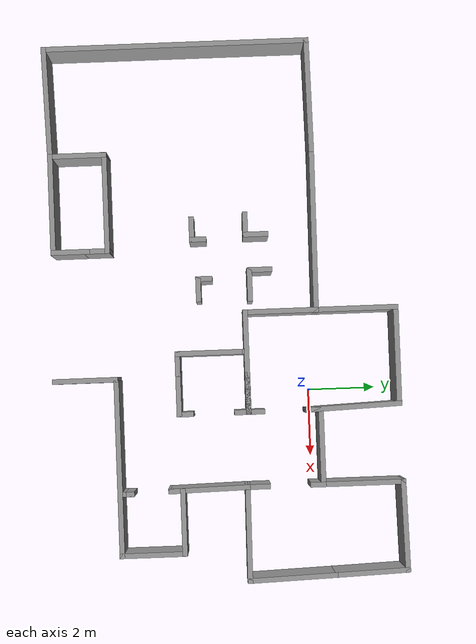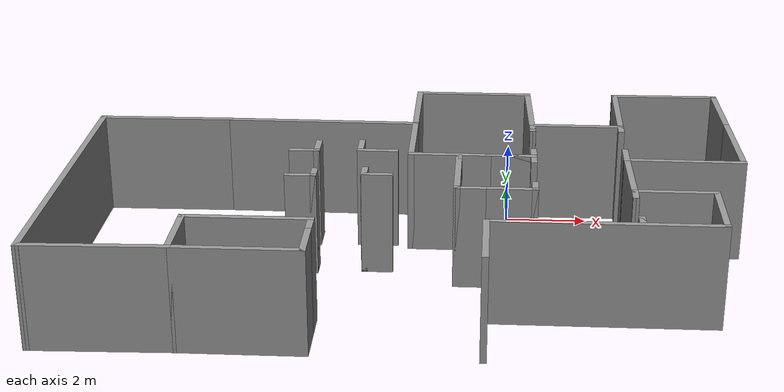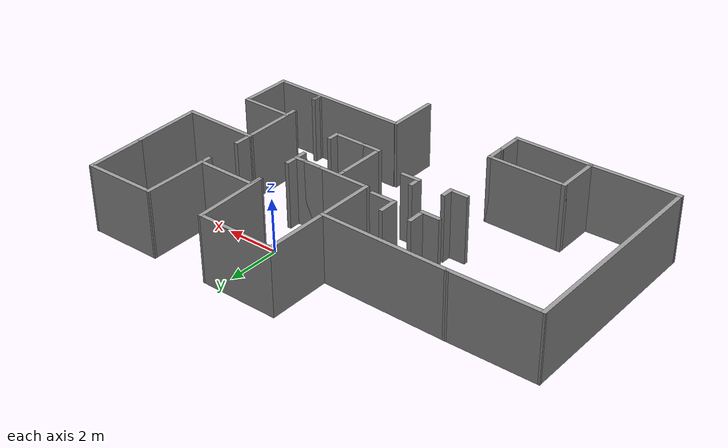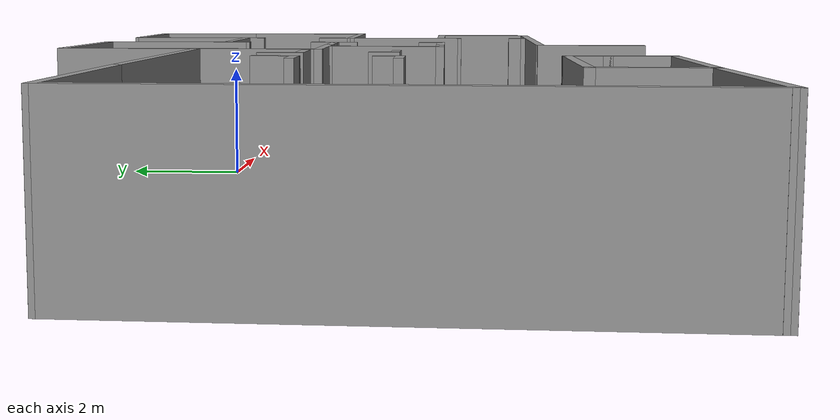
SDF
<?xml version='1.0'?>
<sdf version='1.6'>
  <model name='room1'>
    <pose frame=''>-2.39226 -2.438 0 0 -0 0</pose>
    <link name='Wall_10'>
      <collision name='Wall_10_Collision'>
        <geometry>
          <box>
            <size>3 0.15 2.5</size>
          </box>
        </geometry>
        <pose frame=''>0 0 1.25 0 -0 0</pose>
      </collision>
      <visual name='Wall_10_Visual'>
        <pose frame=''>0 0 1.25 0 -0 0</pose>
        <geometry>
          <box>
            <size>3 0.15 2.5</size>
          </box>
        </geometry>
        <material>
          <script>
            <uri>file://media/materials/scripts/gazebo.material</uri>
            <name>Gazebo/Grey</name>
          </script>
          <ambient>1 1 1 1</ambient>
        </material>
        <meta>
          <layer>0</layer>
        </meta>
      </visual>
      <pose frame=''>-3.34611 -3.4198 0 0 -0 0</pose>
    </link>
    <link name='Wall_100'>
      <collision name='Wall_100_Collision'>
        <geometry>
          <box>
            <size>3 0.15 2.5</size>
          </box>
        </geometry>
        <pose frame=''>0 0 1.25 0 -0 0</pose>
      </collision>
      <visual name='Wall_100_Visual'>
        <pose frame=''>0 0 1.25 0 -0 0</pose>
        <geometry>
          <box>
            <size>3 0.15 2.5</size>
          </box>
        </geometry>
        <material>
          <script>
            <uri>file://media/materials/scripts/gazebo.material</uri>
            <name>Gazebo/Grey</name>
          </script>
          <ambient>1 1 1 1</ambient>
        </material>
        <meta>
          <layer>0</layer>
        </meta>
      </visual>
      <pose frame=''>-3.34611 -5.0198 0 0 -0 0</pose>
    </link>
    <link name='Wall_101'>
      <collision name='Wall_101_Collision'>
        <geometry>
          <box>
            <size>1.15 0.15 2.5</size>
          </box>
        </geometry>
        <pose frame=''>0 0 1.25 0 -0 0</pose>
      </collision>
      <visual name='Wall_101_Visual'>
        <pose frame=''>0 0 1.25 0 -0 0</pose>
        <geometry>
          <box>
            <size>1.15 0.15 2.5</size>
          </box>
        </geometry>
        <material>
          <script>
            <uri>file://media/materials/scripts/gazebo.material</uri>
            <name>Gazebo/Grey</name>
          </script>
          <ambient>1 1 1 1</ambient>
        </material>
        <meta>
          <layer>0</layer>
        </meta>
      </visual>
      <pose frame=''>-1.92111 -4.5198 0 0 -0 1.5708</pose>
    </link>
    <link name='Wall_103'>
      <collision name='Wall_103_Collision'>
        <geometry>
          <box>
            <size>4.90013 0.15 2.5</size>
          </box>
        </geometry>
        <pose frame=''>0 0 1.25 0 -0 0</pose>
      </collision>
      <visual name='Wall_103_Visual'>
        <pose frame=''>0 0 1.25 0 -0 0</pose>
        <geometry>
          <box>
            <size>4.90013 0.15 2.5</size>
          </box>
        </geometry>
        <material>
          <script>
            <uri>file://media/materials/scripts/gazebo.material</uri>
            <name>Gazebo/Grey</name>
          </script>
          <ambient>1 1 1 1</ambient>
        </material>
        <meta>
          <layer>0</layer>
        </meta>
      </visual>
      <pose frame=''>-2.33297 2.70219 0 0 -0 -0.007364</pose>
    </link>
    <link name='Wall_11'>
      <collision name='Wall_11_Collision'>
        <geometry>
          <box>
            <size>0.75 0.15 2.5</size>
          </box>
        </geometry>
        <pose frame=''>0 0 1.25 0 -0 0</pose>
      </collision>
      <visual name='Wall_11_Visual'>
        <pose frame=''>0 0 1.25 0 -0 0</pose>
        <geometry>
          <box>
            <size>0.75 0.15 2.5</size>
          </box>
        </geometry>
        <material>
          <script>
            <uri>file://media/materials/scripts/gazebo.material</uri>
            <name>Gazebo/Grey</name>
          </script>
          <ambient>1 1 1 1</ambient>
        </material>
        <meta>
          <layer>0</layer>
        </meta>
      </visual>
      <pose frame=''>-1.92111 -3.7198 0 0 -0 -1.5708</pose>
    </link>
    <link name='Wall_16'>
      <collision name='Wall_16_Collision'>
        <geometry>
          <box>
            <size>7.93882 0.15 2.5</size>
          </box>
        </geometry>
        <pose frame=''>0 0 1.25 0 -0 0</pose>
      </collision>
      <visual name='Wall_16_Visual'>
        <pose frame=''>0 0 1.25 0 -0 0</pose>
        <geometry>
          <box>
            <size>7.93882 0.15 2.5</size>
          </box>
        </geometry>
        <material>
          <script>
            <uri>file://media/materials/scripts/gazebo.material</uri>
            <name>Gazebo/Grey</name>
          </script>
          <ambient>1 1 1 1</ambient>
        </material>
        <meta>
          <layer>0</layer>
        </meta>
      </visual>
      <pose frame=''>-7.95796 -1.20971 0 0 -0 1.5708</pose>
    </link>
    <link name='Wall_17'>
      <collision name='Wall_17_Collision'>
        <geometry>
          <box>
            <size>3.40019 0.15 2.5</size>
          </box>
        </geometry>
        <pose frame=''>0 0 1.25 0 -0 0</pose>
      </collision>
      <visual name='Wall_17_Visual'>
        <pose frame=''>0 0 1.25 0 -0 0</pose>
        <geometry>
          <box>
            <size>3.40019 0.15 2.5</size>
          </box>
        </geometry>
        <material>
          <script>
            <uri>file://media/materials/scripts/gazebo.material</uri>
            <name>Gazebo/Grey</name>
          </script>
          <ambient>1 1 1 1</ambient>
        </material>
        <meta>
          <layer>0</layer>
        </meta>
      </visual>
      <pose frame=''>-6.33296 2.70219 0 0 -0 0.010763</pose>
    </link>
    <link name='Wall_19'>
      <collision name='Wall_19_Collision'>
        <geometry>
          <box>
            <size>1.75 0.15 2.5</size>
          </box>
        </geometry>
        <pose frame=''>0 0 1.25 0 -0 0</pose>
      </collision>
      <visual name='Wall_19_Visual'>
        <pose frame=''>0 0 1.25 0 -0 0</pose>
        <geometry>
          <box>
            <size>1.75 0.15 2.5</size>
          </box>
        </geometry>
        <material>
          <script>
            <uri>file://media/materials/scripts/gazebo.material</uri>
            <name>Gazebo/Grey</name>
          </script>
          <ambient>1 1 1 1</ambient>
        </material>
        <meta>
          <layer>0</layer>
        </meta>
      </visual>
      <pose frame=''>-4.77111 -4.2198 0 0 -0 -1.5708</pose>
    </link>
    <link name='Wall_23'>
      <collision name='Wall_23_Collision'>
        <geometry>
          <box>
            <size>2 0.15 2.5</size>
          </box>
        </geometry>
        <pose frame=''>0 0 1.25 0 -0 0</pose>
      </collision>
      <visual name='Wall_23_Visual'>
        <pose frame=''>0 0 1.25 0 -0 0</pose>
        <geometry>
          <box>
            <size>2 0.15 2.5</size>
          </box>
        </geometry>
        <material>
          <script>
            <uri>file://media/materials/scripts/gazebo.material</uri>
            <name>Gazebo/Grey</name>
          </script>
          <ambient>1 1 1 1</ambient>
        </material>
        <meta>
          <layer>0</layer>
        </meta>
      </visual>
      <pose frame=''>6.1676 -1.44342 0 0 -0 0</pose>
    </link>
    <link name='Wall_24'>
      <collision name='Wall_24_Collision'>
        <geometry>
          <box>
            <size>2 0.15 2.5</size>
          </box>
        </geometry>
        <pose frame=''>0 0 1.25 0 -0 0</pose>
      </collision>
      <visual name='Wall_24_Visual'>
        <pose frame=''>0 0 1.25 0 -0 0</pose>
        <geometry>
          <box>
            <size>2 0.15 2.5</size>
          </box>
        </geometry>
        <material>
          <script>
            <uri>file://media/materials/scripts/gazebo.material</uri>
            <name>Gazebo/Grey</name>
          </script>
          <ambient>1 1 1 1</ambient>
        </material>
        <meta>
          <layer>0</layer>
        </meta>
      </visual>
      <pose frame=''>7.0926 -2.36842 0 0 -0 -1.5708</pose>
    </link>
    <link name='Wall_25'>
      <collision name='Wall_25_Collision'>
        <geometry>
          <box>
            <size>5.25 0.15 2.5</size>
          </box>
        </geometry>
        <pose frame=''>0 0 1.25 0 -0 0</pose>
      </collision>
      <visual name='Wall_25_Visual'>
        <pose frame=''>0 0 1.25 0 -0 0</pose>
        <geometry>
          <box>
            <size>5.25 0.15 2.5</size>
          </box>
        </geometry>
        <material>
          <script>
            <uri>file://media/materials/scripts/gazebo.material</uri>
            <name>Gazebo/Grey</name>
          </script>
          <ambient>1 1 1 1</ambient>
        </material>
        <meta>
          <layer>0</layer>
        </meta>
      </visual>
      <pose frame=''>4.5426 -3.29342 0 0 -0 3.14159</pose>
    </link>
    <link name='Wall_27'>
      <collision name='Wall_27_Collision'>
        <geometry>
          <box>
            <size>0.5 0.15 2.5</size>
          </box>
        </geometry>
        <pose frame=''>0 0 1.25 0 -0 0</pose>
      </collision>
      <visual name='Wall_27_Visual'>
        <pose frame=''>0 0 1.25 0 -0 0</pose>
        <geometry>
          <box>
            <size>0.5 0.15 2.5</size>
          </box>
        </geometry>
        <material>
          <script>
            <uri>file://media/materials/scripts/gazebo.material</uri>
            <name>Gazebo/Grey</name>
          </script>
          <ambient>1 1 1 1</ambient>
        </material>
        <meta>
          <layer>0</layer>
        </meta>
      </visual>
      <pose frame=''>5.2426 -1.61842 0 0 -0 -1.5708</pose>
    </link>
    <link name='Wall_33'>
      <collision name='Wall_33_Collision'>
        <geometry>
          <box>
            <size>0.25 0.15 2.5</size>
          </box>
        </geometry>
        <pose frame=''>0 0 1.25 0 -0 0</pose>
      </collision>
      <visual name='Wall_33_Visual'>
        <pose frame=''>0 0 1.25 0 -0 0</pose>
        <geometry>
          <box>
            <size>0.25 0.15 2.5</size>
          </box>
        </geometry>
        <material>
          <script>
            <uri>file://media/materials/scripts/gazebo.material</uri>
            <name>Gazebo/Grey</name>
          </script>
          <ambient>1 1 1 1</ambient>
        </material>
        <meta>
          <layer>0</layer>
        </meta>
      </visual>
      <pose frame=''>5.28567 -2.99757 0 0 -0 -1.5708</pose>
    </link>
    <link name='Wall_34'>
      <collision name='Wall_34_Collision'>
        <geometry>
          <box>
            <size>0.25 0.15 2.5</size>
          </box>
        </geometry>
        <pose frame=''>0 0 1.25 0 -0 0</pose>
      </collision>
      <visual name='Wall_34_Visual'>
        <pose frame=''>0 0 1.25 0 -0 0</pose>
        <geometry>
          <box>
            <size>0.25 0.15 2.5</size>
          </box>
        </geometry>
        <material>
          <script>
            <uri>file://media/materials/scripts/gazebo.material</uri>
            <name>Gazebo/Grey</name>
          </script>
          <ambient>1 1 1 1</ambient>
        </material>
        <meta>
          <layer>0</layer>
        </meta>
      </visual>
      <pose frame=''>5.28567 -3.09757 0 0 -0 -1.5708</pose>
    </link>
    <link name='Wall_36'>
      <collision name='Wall_36_Collision'>
        <geometry>
          <box>
            <size>2.41743 0.15 2.5</size>
          </box>
        </geometry>
        <pose frame=''>0 0 1.25 0 -0 0</pose>
      </collision>
      <visual name='Wall_36_Visual'>
        <pose frame=''>0 0 1.25 0 -0 0</pose>
        <geometry>
          <box>
            <size>2.41743 0.15 2.5</size>
          </box>
        </geometry>
        <material>
          <script>
            <uri>file://media/materials/scripts/gazebo.material</uri>
            <name>Gazebo/Grey</name>
          </script>
          <ambient>1 1 1 1</ambient>
        </material>
        <meta>
          <layer>0</layer>
        </meta>
      </visual>
      <pose frame=''>5.22138 -0.659903 0 0 -0 1.58952</pose>
    </link>
    <link name='Wall_37'>
      <collision name='Wall_37_Collision'>
        <geometry>
          <box>
            <size>2.90786 0.15 2.5</size>
          </box>
        </geometry>
        <pose frame=''>0 0 1.25 0 -0 0</pose>
      </collision>
      <visual name='Wall_37_Visual'>
        <pose frame=''>0 0 1.25 0 -0 0</pose>
        <geometry>
          <box>
            <size>2.90786 0.15 2.5</size>
          </box>
        </geometry>
        <material>
          <script>
            <uri>file://media/materials/scripts/gazebo.material</uri>
            <name>Gazebo/Grey</name>
          </script>
          <ambient>1 1 1 1</ambient>
        </material>
        <meta>
          <layer>0</layer>
        </meta>
      </visual>
      <pose frame=''>6.57882 0.460494 0 0 -0 -0.009517</pose>
    </link>
    <link name='Wall_38'>
      <collision name='Wall_38_Collision'>
        <geometry>
          <box>
            <size>2.63851 0.15 2.5</size>
          </box>
        </geometry>
        <pose frame=''>0 0 1.25 0 -0 0</pose>
      </collision>
      <visual name='Wall_38_Visual'>
        <pose frame=''>0 0 1.25 0 -0 0</pose>
        <geometry>
          <box>
            <size>2.63851 0.15 2.5</size>
          </box>
        </geometry>
        <material>
          <script>
            <uri>file://media/materials/scripts/gazebo.material</uri>
            <name>Gazebo/Grey</name>
          </script>
          <ambient>1 1 1 1</ambient>
        </material>
        <meta>
          <layer>0</layer>
        </meta>
      </visual>
      <pose frame=''>7.91637 1.71106 0 0 -0 1.60384</pose>
    </link>
    <link name='Wall_44'>
      <collision name='Wall_44_Collision'>
        <geometry>
          <box>
            <size>1.93882 0.15 2.5</size>
          </box>
        </geometry>
        <pose frame=''>0 0 1.25 0 -0 0</pose>
      </collision>
      <visual name='Wall_44_Visual'>
        <pose frame=''>0 0 1.25 0 -0 0</pose>
        <geometry>
          <box>
            <size>1.93882 0.15 2.5</size>
          </box>
        </geometry>
        <material>
          <script>
            <uri>file://media/materials/scripts/gazebo.material</uri>
            <name>Gazebo/Grey</name>
          </script>
          <ambient>1 1 1 1</ambient>
        </material>
        <meta>
          <layer>0</layer>
        </meta>
      </visual>
      <pose frame=''>1.89203 -4.20971 0 0 -0 1.5708</pose>
    </link>
    <link name='Wall_48'>
      <collision name='Wall_48_Collision'>
        <geometry>
          <box>
            <size>1.34252 0.15 2.5</size>
          </box>
        </geometry>
        <pose frame=''>0 0 1.25 0 -0 0</pose>
      </collision>
      <visual name='Wall_48_Visual'>
        <pose frame=''>0 0 1.25 0 -0 0</pose>
        <geometry>
          <box>
            <size>1.34252 0.15 2.5</size>
          </box>
        </geometry>
        <material>
          <script>
            <uri>file://media/materials/scripts/gazebo.material</uri>
            <name>Gazebo/Grey</name>
          </script>
          <ambient>1 1 1 1</ambient>
        </material>
        <meta>
          <layer>0</layer>
        </meta>
      </visual>
      <pose frame=''>2.39577 -1.4653 0 0 -0 0</pose>
    </link>
    <link name='Wall_49'>
      <collision name='Wall_49_Collision'>
        <geometry>
          <box>
            <size>0.5 0.15 2.5</size>
          </box>
        </geometry>
        <pose frame=''>0 0 1.25 0 -0 0</pose>
      </collision>
      <visual name='Wall_49_Visual'>
        <pose frame=''>0 0 1.25 0 -0 0</pose>
        <geometry>
          <box>
            <size>0.5 0.15 2.5</size>
          </box>
        </geometry>
        <material>
          <script>
            <uri>file://media/materials/scripts/gazebo.material</uri>
            <name>Gazebo/Grey</name>
          </script>
          <ambient>1 1 1 1</ambient>
        </material>
        <meta>
          <layer>0</layer>
        </meta>
      </visual>
      <pose frame=''>2.99203 -1.2903 0 0 -0 1.5708</pose>
    </link>
    <link name='Wall_51'>
      <collision name='Wall_51_Collision'>
        <geometry>
          <box>
            <size>0.5 0.15 2.5</size>
          </box>
        </geometry>
        <pose frame=''>0 0 1.25 0 -0 0</pose>
      </collision>
      <visual name='Wall_51_Visual'>
        <pose frame=''>0 0 1.25 0 -0 0</pose>
        <geometry>
          <box>
            <size>0.5 0.15 2.5</size>
          </box>
        </geometry>
        <material>
          <script>
            <uri>file://media/materials/scripts/gazebo.material</uri>
            <name>Gazebo/Grey</name>
          </script>
          <ambient>1 1 1 1</ambient>
        </material>
        <meta>
          <layer>0</layer>
        </meta>
      </visual>
      <pose frame=''>2.99203 0.409701 0 0 -0 1.5708</pose>
    </link>
    <link name='Wall_52'>
      <collision name='Wall_52_Collision'>
        <geometry>
          <box>
            <size>1.25 0.15 2.5</size>
          </box>
        </geometry>
        <pose frame=''>0 0 1.25 0 -0 0</pose>
      </collision>
      <visual name='Wall_52_Visual'>
        <pose frame=''>0 0 1.25 0 -0 0</pose>
        <geometry>
          <box>
            <size>1.25 0.15 2.5</size>
          </box>
        </geometry>
        <material>
          <script>
            <uri>file://media/materials/scripts/gazebo.material</uri>
            <name>Gazebo/Grey</name>
          </script>
          <ambient>1 1 1 1</ambient>
        </material>
        <meta>
          <layer>0</layer>
        </meta>
      </visual>
      <pose frame=''>2.44204 0.584701 0 0 -0 3.14159</pose>
    </link>
    <link name='Wall_53'>
      <collision name='Wall_53_Collision'>
        <geometry>
          <box>
            <size>1.25 0.15 2.5</size>
          </box>
        </geometry>
        <pose frame=''>0 0 1.25 0 -0 0</pose>
      </collision>
      <visual name='Wall_53_Visual'>
        <pose frame=''>0 0 1.25 0 -0 0</pose>
        <geometry>
          <box>
            <size>1.25 0.15 2.5</size>
          </box>
        </geometry>
        <material>
          <script>
            <uri>file://media/materials/scripts/gazebo.material</uri>
            <name>Gazebo/Grey</name>
          </script>
          <ambient>1 1 1 1</ambient>
        </material>
        <meta>
          <layer>0</layer>
        </meta>
      </visual>
      <pose frame=''>2.44204 0.584701 0 0 -0 0</pose>
    </link>
    <link name='Wall_54'>
      <collision name='Wall_54_Collision'>
        <geometry>
          <box>
            <size>0.5532 0.15 2.5</size>
          </box>
        </geometry>
        <pose frame=''>0 0 1.25 0 -0 0</pose>
      </collision>
      <visual name='Wall_54_Visual'>
        <pose frame=''>0 0 1.25 0 -0 0</pose>
        <geometry>
          <box>
            <size>0.5532 0.15 2.5</size>
          </box>
        </geometry>
        <material>
          <script>
            <uri>file://media/materials/scripts/gazebo.material</uri>
            <name>Gazebo/Grey</name>
          </script>
          <ambient>1 1 1 1</ambient>
        </material>
        <meta>
          <layer>0</layer>
        </meta>
      </visual>
      <pose frame=''>2.99203 0.786301 0 0 -0 1.5708</pose>
    </link>
    <link name='Wall_56'>
      <collision name='Wall_56_Collision'>
        <geometry>
          <box>
            <size>0.4468 0.15 2.5</size>
          </box>
        </geometry>
        <pose frame=''>0 0 1.25 0 -0 0</pose>
      </collision>
      <visual name='Wall_56_Visual'>
        <pose frame=''>0 0 1.25 0 -0 0</pose>
        <geometry>
          <box>
            <size>0.4468 0.15 2.5</size>
          </box>
        </geometry>
        <material>
          <script>
            <uri>file://media/materials/scripts/gazebo.material</uri>
            <name>Gazebo/Grey</name>
          </script>
          <ambient>1 1 1 1</ambient>
        </material>
        <meta>
          <layer>0</layer>
        </meta>
      </visual>
      <pose frame=''>2.99203 2.4863 0 0 -0 1.5708</pose>
    </link>
    <link name='Wall_60'>
      <collision name='Wall_60_Collision'>
        <geometry>
          <box>
            <size>2 0.15 2.5</size>
          </box>
        </geometry>
        <pose frame=''>0 0 1.25 0 -0 0</pose>
      </collision>
      <visual name='Wall_60_Visual'>
        <pose frame=''>0 0 1.25 0 -0 0</pose>
        <geometry>
          <box>
            <size>2 0.15 2.5</size>
          </box>
        </geometry>
        <material>
          <script>
            <uri>file://media/materials/scripts/gazebo.material</uri>
            <name>Gazebo/Grey</name>
          </script>
          <ambient>1 1 1 1</ambient>
        </material>
        <meta>
          <layer>0</layer>
        </meta>
      </visual>
      <pose frame=''>0.967034 0.584701 0 0 -0 3.14159</pose>
    </link>
    <link name='Wall_61'>
      <collision name='Wall_61_Collision'>
        <geometry>
          <box>
            <size>2.25 0.15 2.5</size>
          </box>
        </geometry>
        <pose frame=''>0 0 1.25 0 -0 0</pose>
      </collision>
      <visual name='Wall_61_Visual'>
        <pose frame=''>0 0 1.25 0 -0 0</pose>
        <geometry>
          <box>
            <size>2.25 0.15 2.5</size>
          </box>
        </geometry>
        <material>
          <script>
            <uri>file://media/materials/scripts/gazebo.material</uri>
            <name>Gazebo/Grey</name>
          </script>
          <ambient>1 1 1 1</ambient>
        </material>
        <meta>
          <layer>0</layer>
        </meta>
      </visual>
      <pose frame=''>0.042035 1.6347 0 0 -0 1.5708</pose>
    </link>
    <link name='Wall_62'>
      <collision name='Wall_62_Collision'>
        <geometry>
          <box>
            <size>2.5 0.15 2.5</size>
          </box>
        </geometry>
        <pose frame=''>0 0 1.25 0 -0 0</pose>
      </collision>
      <visual name='Wall_62_Visual'>
        <pose frame=''>0 0 1.25 0 -0 0</pose>
        <geometry>
          <box>
            <size>2.5 0.15 2.5</size>
          </box>
        </geometry>
        <material>
          <script>
            <uri>file://media/materials/scripts/gazebo.material</uri>
            <name>Gazebo/Grey</name>
          </script>
          <ambient>1 1 1 1</ambient>
        </material>
        <meta>
          <layer>0</layer>
        </meta>
      </visual>
      <pose frame=''>0.042035 3.8597 0 0 -0 1.5708</pose>
    </link>
    <link name='Wall_63'>
      <collision name='Wall_63_Collision'>
        <geometry>
          <box>
            <size>3 0.15 2.5</size>
          </box>
        </geometry>
        <pose frame=''>0 0 1.25 0 -0 0</pose>
      </collision>
      <visual name='Wall_63_Visual'>
        <pose frame=''>0 0 1.25 0 -0 0</pose>
        <geometry>
          <box>
            <size>3 0.15 2.5</size>
          </box>
        </geometry>
        <material>
          <script>
            <uri>file://media/materials/scripts/gazebo.material</uri>
            <name>Gazebo/Grey</name>
          </script>
          <ambient>1 1 1 1</ambient>
        </material>
        <meta>
          <layer>0</layer>
        </meta>
      </visual>
      <pose frame=''>1.46704 5.0347 0 0 -0 0</pose>
    </link>
    <link name='Wall_68'>
      <collision name='Wall_68_Collision'>
        <geometry>
          <box>
            <size>0.75 0.15 2.5</size>
          </box>
        </geometry>
        <pose frame=''>0 0 1.25 0 -0 0</pose>
      </collision>
      <visual name='Wall_68_Visual'>
        <pose frame=''>0 0 1.25 0 -0 0</pose>
        <geometry>
          <box>
            <size>0.75 0.15 2.5</size>
          </box>
        </geometry>
        <material>
          <script>
            <uri>file://media/materials/scripts/gazebo.material</uri>
            <name>Gazebo/Grey</name>
          </script>
          <ambient>1 1 1 1</ambient>
        </material>
        <meta>
          <layer>0</layer>
        </meta>
      </visual>
      <pose frame=''>1.49951 -1.4653 0 0 -0 3.14159</pose>
    </link>
    <link name='Wall_69'>
      <collision name='Wall_69_Collision'>
        <geometry>
          <box>
            <size>2 0.15 2.5</size>
          </box>
        </geometry>
        <pose frame=''>0 0 1.25 0 -0 0</pose>
      </collision>
      <visual name='Wall_69_Visual'>
        <pose frame=''>0 0 1.25 0 -0 0</pose>
        <geometry>
          <box>
            <size>2 0.15 2.5</size>
          </box>
        </geometry>
        <material>
          <script>
            <uri>file://media/materials/scripts/gazebo.material</uri>
            <name>Gazebo/Grey</name>
          </script>
          <ambient>1 1 1 1</ambient>
        </material>
        <meta>
          <layer>0</layer>
        </meta>
      </visual>
      <pose frame=''>1.19951 -0.540299 0 0 -0 1.5708</pose>
    </link>
    <link name='Wall_70'>
      <collision name='Wall_70_Collision'>
        <geometry>
          <box>
            <size>0.25 0.15 2.5</size>
          </box>
        </geometry>
        <pose frame=''>0 0 1.25 0 -0 0</pose>
      </collision>
      <visual name='Wall_70_Visual'>
        <pose frame=''>0 0 1.25 0 -0 0</pose>
        <geometry>
          <box>
            <size>0.25 0.15 2.5</size>
          </box>
        </geometry>
        <material>
          <script>
            <uri>file://media/materials/scripts/gazebo.material</uri>
            <name>Gazebo/Grey</name>
          </script>
          <ambient>1 1 1 1</ambient>
        </material>
        <meta>
          <layer>0</layer>
        </meta>
      </visual>
      <pose frame=''>1.19951 0.434701 0 0 -0 1.5708</pose>
    </link>
    <link name='Wall_72'>
      <collision name='Wall_72_Collision'>
        <geometry>
          <box>
            <size>2.84865 0.15 2.5</size>
          </box>
        </geometry>
        <pose frame=''>0 0 1.25 0 -0 0</pose>
      </collision>
      <visual name='Wall_72_Visual'>
        <pose frame=''>0 0 1.25 0 -0 0</pose>
        <geometry>
          <box>
            <size>2.84865 0.15 2.5</size>
          </box>
        </geometry>
        <material>
          <script>
            <uri>file://media/materials/scripts/gazebo.material</uri>
            <name>Gazebo/Grey</name>
          </script>
          <ambient>1 1 1 1</ambient>
        </material>
        <meta>
          <layer>0</layer>
        </meta>
      </visual>
      <pose frame=''>2.94204 3.6863 0 0 -0 -1.53373</pose>
    </link>
    <link name='Wall_76'>
      <collision name='Wall_76_Collision'>
        <geometry>
          <box>
            <size>0.459773 0.15 2.5</size>
          </box>
        </geometry>
        <pose frame=''>0 0 1.25 0 -0 0</pose>
      </collision>
      <visual name='Wall_76_Visual'>
        <pose frame=''>0 0 1.25 0 -0 0</pose>
        <geometry>
          <box>
            <size>0.459773 0.15 2.5</size>
          </box>
        </geometry>
        <material>
          <script>
            <uri>file://media/materials/scripts/gazebo.material</uri>
            <name>Gazebo/Grey</name>
          </script>
          <ambient>1 1 1 1</ambient>
        </material>
        <meta>
          <layer>0</layer>
        </meta>
      </visual>
      <pose frame=''>5.20015 2.55839 0 0 -0 -1.5708</pose>
    </link>
    <link name='Wall_78'>
      <collision name='Wall_78_Collision'>
        <geometry>
          <box>
            <size>0.75 0.15 2.5</size>
          </box>
        </geometry>
        <pose frame=''>0 0 1.25 0 -0 0</pose>
      </collision>
      <visual name='Wall_78_Visual'>
        <pose frame=''>0 0 1.25 0 -0 0</pose>
        <geometry>
          <box>
            <size>0.75 0.15 2.5</size>
          </box>
        </geometry>
        <material>
          <script>
            <uri>file://media/materials/scripts/gazebo.material</uri>
            <name>Gazebo/Grey</name>
          </script>
          <ambient>1 1 1 1</ambient>
        </material>
        <meta>
          <layer>0</layer>
        </meta>
      </visual>
      <pose frame=''>5.20015 0.773615 0 0 -0 -1.5708</pose>
    </link>
    <link name='Wall_80'>
      <collision name='Wall_80_Collision'>
        <geometry>
          <box>
            <size>2.25 0.15 2.5</size>
          </box>
        </geometry>
        <pose frame=''>0 0 1.25 0 -0 0</pose>
      </collision>
      <visual name='Wall_80_Visual'>
        <pose frame=''>0 0 1.25 0 -0 0</pose>
        <geometry>
          <box>
            <size>2.25 0.15 2.5</size>
          </box>
        </geometry>
        <material>
          <script>
            <uri>file://media/materials/scripts/gazebo.material</uri>
            <name>Gazebo/Grey</name>
          </script>
          <ambient>1 1 1 1</ambient>
        </material>
        <meta>
          <layer>0</layer>
        </meta>
      </visual>
      <pose frame=''>4.15015 2.71327 0 0 -0 3.14159</pose>
    </link>
    <link name='Wall_82'>
      <collision name='Wall_82_Collision'>
        <geometry>
          <box>
            <size>2.5 0.15 2.5</size>
          </box>
        </geometry>
        <pose frame=''>0 0 1.25 0 -0 0</pose>
      </collision>
      <visual name='Wall_82_Visual'>
        <pose frame=''>0 0 1.25 0 -0 0</pose>
        <geometry>
          <box>
            <size>2.5 0.15 2.5</size>
          </box>
        </geometry>
        <material>
          <script>
            <uri>file://media/materials/scripts/gazebo.material</uri>
            <name>Gazebo/Grey</name>
          </script>
          <ambient>1 1 1 1</ambient>
        </material>
        <meta>
          <layer>0</layer>
        </meta>
      </visual>
      <pose frame=''>5.20015 3.88827 0 0 -0 1.5708</pose>
    </link>
    <link name='Wall_83'>
      <collision name='Wall_83_Collision'>
        <geometry>
          <box>
            <size>2.75031 0.15 2.5</size>
          </box>
        </geometry>
        <pose frame=''>0 0 1.25 0 -0 0</pose>
      </collision>
      <visual name='Wall_83_Visual'>
        <pose frame=''>0 0 1.25 0 -0 0</pose>
        <geometry>
          <box>
            <size>2.75031 0.15 2.5</size>
          </box>
        </geometry>
        <material>
          <script>
            <uri>file://media/materials/scripts/gazebo.material</uri>
            <name>Gazebo/Grey</name>
          </script>
          <ambient>1 1 1 1</ambient>
        </material>
        <meta>
          <layer>0</layer>
        </meta>
      </visual>
      <pose frame=''>6.50016 5.08339 0 0 -0 0.015471</pose>
    </link>
    <link name='Wall_84'>
      <collision name='Wall_84_Collision'>
        <geometry>
          <box>
            <size>2.30018 0.15 2.5</size>
          </box>
        </geometry>
        <pose frame=''>0 0 1.25 0 -0 0</pose>
      </collision>
      <visual name='Wall_84_Visual'>
        <pose frame=''>0 0 1.25 0 -0 0</pose>
        <geometry>
          <box>
            <size>2.30018 0.15 2.5</size>
          </box>
        </geometry>
        <material>
          <script>
            <uri>file://media/materials/scripts/gazebo.material</uri>
            <name>Gazebo/Grey</name>
          </script>
          <ambient>1 1 1 1</ambient>
        </material>
        <meta>
          <layer>0</layer>
        </meta>
      </visual>
      <pose frame=''>7.83771 4.02907 0 0 -0 -1.53586</pose>
    </link>
    <link name='Wall_87'>
      <collision name='Wall_87_Collision'>
        <geometry>
          <box>
            <size>0.75 0.15 2.5</size>
          </box>
        </geometry>
        <pose frame=''>0 0 1.25 0 -0 0</pose>
      </collision>
      <visual name='Wall_87_Visual'>
        <pose frame=''>0 0 1.25 0 -0 0</pose>
        <geometry>
          <box>
            <size>0.75 0.15 2.5</size>
          </box>
        </geometry>
        <material>
          <script>
            <uri>file://media/materials/scripts/gazebo.material</uri>
            <name>Gazebo/Grey</name>
          </script>
          <ambient>1 1 1 1</ambient>
        </material>
        <meta>
          <layer>0</layer>
        </meta>
      </visual>
      <pose frame=''>-2.55528 0.679883 0 0 -0 0</pose>
    </link>
    <link name='Wall_88'>
      <collision name='Wall_88_Collision'>
        <geometry>
          <box>
            <size>0.75 0.15 2.5</size>
          </box>
        </geometry>
        <pose frame=''>0 0 1.25 0 -0 0</pose>
      </collision>
      <visual name='Wall_88_Visual'>
        <pose frame=''>0 0 1.25 0 -0 0</pose>
        <geometry>
          <box>
            <size>0.75 0.15 2.5</size>
          </box>
        </geometry>
        <material>
          <script>
            <uri>file://media/materials/scripts/gazebo.material</uri>
            <name>Gazebo/Grey</name>
          </script>
          <ambient>1 1 1 1</ambient>
        </material>
        <meta>
          <layer>0</layer>
        </meta>
      </visual>
      <pose frame=''>-2.25528 0.979883 0 0 -0 1.5708</pose>
    </link>
    <link name='Wall_90'>
      <collision name='Wall_90_Collision'>
        <geometry>
          <box>
            <size>0.75 0.15 2.5</size>
          </box>
        </geometry>
        <pose frame=''>0 0 1.25 0 -0 0</pose>
      </collision>
      <visual name='Wall_90_Visual'>
        <pose frame=''>0 0 1.25 0 -0 0</pose>
        <geometry>
          <box>
            <size>0.75 0.15 2.5</size>
          </box>
        </geometry>
        <material>
          <script>
            <uri>file://media/materials/scripts/gazebo.material</uri>
            <name>Gazebo/Grey</name>
          </script>
          <ambient>1 1 1 1</ambient>
        </material>
        <meta>
          <layer>0</layer>
        </meta>
      </visual>
      <pose frame=''>-1.20341 1.05287 0 0 -0 -1.5708</pose>
    </link>
    <link name='Wall_91'>
      <collision name='Wall_91_Collision'>
        <geometry>
          <box>
            <size>1 0.15 2.5</size>
          </box>
        </geometry>
        <pose frame=''>0 0 1.25 0 -0 0</pose>
      </collision>
      <visual name='Wall_91_Visual'>
        <pose frame=''>0 0 1.25 0 -0 0</pose>
        <geometry>
          <box>
            <size>1 0.15 2.5</size>
          </box>
        </geometry>
        <material>
          <script>
            <uri>file://media/materials/scripts/gazebo.material</uri>
            <name>Gazebo/Grey</name>
          </script>
          <ambient>1 1 1 1</ambient>
        </material>
        <meta>
          <layer>0</layer>
        </meta>
      </visual>
      <pose frame=''>-0.77841 0.752868 0 0 -0 0</pose>
    </link>
    <link name='Wall_93'>
      <collision name='Wall_93_Collision'>
        <geometry>
          <box>
            <size>0.75 0.15 2.5</size>
          </box>
        </geometry>
        <pose frame=''>0 0 1.25 0 -0 0</pose>
      </collision>
      <visual name='Wall_93_Visual'>
        <pose frame=''>0 0 1.25 0 -0 0</pose>
        <geometry>
          <box>
            <size>0.75 0.15 2.5</size>
          </box>
        </geometry>
        <material>
          <script>
            <uri>file://media/materials/scripts/gazebo.material</uri>
            <name>Gazebo/Grey</name>
          </script>
          <ambient>1 1 1 1</ambient>
        </material>
        <meta>
          <layer>0</layer>
        </meta>
      </visual>
      <pose frame=''>-2.46351 -0.910809 0 0 -0 0</pose>
    </link>
    <link name='Wall_94'>
      <collision name='Wall_94_Collision'>
        <geometry>
          <box>
            <size>0.5 0.15 2.5</size>
          </box>
        </geometry>
        <pose frame=''>0 0 1.25 0 -0 0</pose>
      </collision>
      <visual name='Wall_94_Visual'>
        <pose frame=''>0 0 1.25 0 -0 0</pose>
        <geometry>
          <box>
            <size>0.5 0.15 2.5</size>
          </box>
        </geometry>
        <material>
          <script>
            <uri>file://media/materials/scripts/gazebo.material</uri>
            <name>Gazebo/Grey</name>
          </script>
          <ambient>1 1 1 1</ambient>
        </material>
        <meta>
          <layer>0</layer>
        </meta>
      </visual>
      <pose frame=''>-2.16351 -0.735809 0 0 -0 1.5708</pose>
    </link>
    <link name='Wall_96'>
      <collision name='Wall_96_Collision'>
        <geometry>
          <box>
            <size>0.5 0.15 2.5</size>
          </box>
        </geometry>
        <pose frame=''>0 0 1.25 0 -0 0</pose>
      </collision>
      <visual name='Wall_96_Visual'>
        <pose frame=''>0 0 1.25 0 -0 0</pose>
        <geometry>
          <box>
            <size>0.5 0.15 2.5</size>
          </box>
        </geometry>
        <material>
          <script>
            <uri>file://media/materials/scripts/gazebo.material</uri>
            <name>Gazebo/Grey</name>
          </script>
          <ambient>1 1 1 1</ambient>
        </material>
        <meta>
          <layer>0</layer>
        </meta>
      </visual>
      <pose frame=''>-0.989278 -0.596365 0 0 -0 -1.5708</pose>
    </link>
    <link name='Wall_97'>
      <collision name='Wall_97_Collision'>
        <geometry>
          <box>
            <size>0.75 0.15 2.5</size>
          </box>
        </geometry>
        <pose frame=''>0 0 1.25 0 -0 0</pose>
      </collision>
      <visual name='Wall_97_Visual'>
        <pose frame=''>0 0 1.25 0 -0 0</pose>
        <geometry>
          <box>
            <size>0.75 0.15 2.5</size>
          </box>
        </geometry>
        <material>
          <script>
            <uri>file://media/materials/scripts/gazebo.material</uri>
            <name>Gazebo/Grey</name>
          </script>
          <ambient>1 1 1 1</ambient>
        </material>
        <meta>
          <layer>0</layer>
        </meta>
      </visual>
      <pose frame=''>-0.689278 -0.771365 0 0 -0 0</pose>
    </link>
    <link name='Wall_99'>
      <collision name='Wall_99_Collision'>
        <geometry>
          <box>
            <size>3.33797 0.15 2.5</size>
          </box>
        </geometry>
        <pose frame=''>0 0 1.25 0 -0 0</pose>
      </collision>
      <visual name='Wall_99_Visual'>
        <pose frame=''>0 0 1.25 0 -0 0</pose>
        <geometry>
          <box>
            <size>3.33797 0.15 2.5</size>
          </box>
        </geometry>
        <material>
          <script>
            <uri>file://media/materials/scripts/gazebo.material</uri>
            <name>Gazebo/Grey</name>
          </script>
          <ambient>1 1 1 1</ambient>
        </material>
        <meta>
          <layer>0</layer>
        </meta>
      </visual>
      <pose frame=''>-6.36454 -5.06196 0 0 -0 0.026452</pose>
    </link>
    <static>1</static>
  </model>
</sdf>
